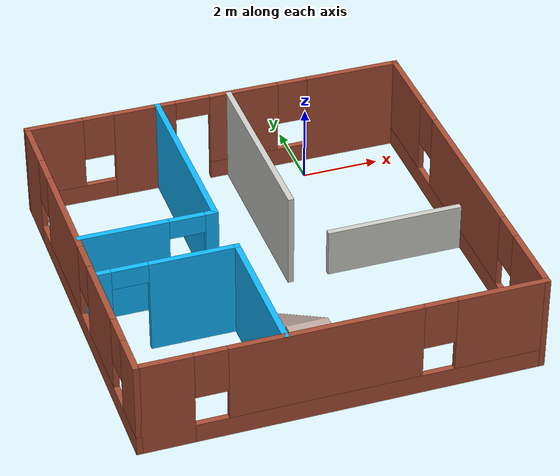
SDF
<?xml version='1.0'?>
<sdf version='1.6'>
  <model name='House'>
    <pose frame=''>-2.1867 -4.17693 0 0 -0 0</pose>
    <link name='Stairs_1'>
      <visual name='Stairs_1_Visual_0'>
        <pose frame=''>-0.820824 -1.46811 0.083333 0 -0 0</pose>
        <geometry>
          <box>
            <size>1 0.233333 0.166667</size>
          </box>
        </geometry>
        <material>
          <script>
            <uri>file://media/materials/scripts/gazebo.material</uri>
            <name>Gazebo/Grey</name>
          </script>
          <ambient>0.760784 0.662745 0.627451 1</ambient>
        </material>
        <meta>
          <layer>0</layer>
        </meta>
      </visual>
      <collision name='Stairs_1_Collision_0'>
        <geometry>
          <box>
            <size>1 0.233333 0.166667</size>
          </box>
        </geometry>
        <pose frame=''>-0.820824 -1.46811 0.083333 0 -0 0</pose>
      </collision>
      <visual name='Stairs_1_Visual_1'>
        <pose frame=''>-0.820824 -1.70145 0.25 0 -0 0</pose>
        <geometry>
          <box>
            <size>1 0.233333 0.166667</size>
          </box>
        </geometry>
        <material>
          <script>
            <uri>file://media/materials/scripts/gazebo.material</uri>
            <name>Gazebo/Grey</name>
          </script>
          <ambient>0.760784 0.662745 0.627451 1</ambient>
        </material>
        <meta>
          <layer>0</layer>
        </meta>
      </visual>
      <collision name='Stairs_1_Collision_1'>
        <geometry>
          <box>
            <size>1 0.233333 0.166667</size>
          </box>
        </geometry>
        <pose frame=''>-0.820824 -1.70145 0.25 0 -0 0</pose>
      </collision>
      <visual name='Stairs_1_Visual_2'>
        <pose frame=''>-0.820824 -1.93478 0.416667 0 -0 0</pose>
        <geometry>
          <box>
            <size>1 0.233333 0.166667</size>
          </box>
        </geometry>
        <material>
          <script>
            <uri>file://media/materials/scripts/gazebo.material</uri>
            <name>Gazebo/Grey</name>
          </script>
          <ambient>0.760784 0.662745 0.627451 1</ambient>
        </material>
        <meta>
          <layer>0</layer>
        </meta>
      </visual>
      <collision name='Stairs_1_Collision_2'>
        <geometry>
          <box>
            <size>1 0.233333 0.166667</size>
          </box>
        </geometry>
        <pose frame=''>-0.820824 -1.93478 0.416667 0 -0 0</pose>
      </collision>
      <visual name='Stairs_1_Visual_3'>
        <pose frame=''>-0.820824 -2.16811 0.583333 0 -0 0</pose>
        <geometry>
          <box>
            <size>1 0.233333 0.166667</size>
          </box>
        </geometry>
        <material>
          <script>
            <uri>file://media/materials/scripts/gazebo.material</uri>
            <name>Gazebo/Grey</name>
          </script>
          <ambient>0.760784 0.662745 0.627451 1</ambient>
        </material>
        <meta>
          <layer>0</layer>
        </meta>
      </visual>
      <collision name='Stairs_1_Collision_3'>
        <geometry>
          <box>
            <size>1 0.233333 0.166667</size>
          </box>
        </geometry>
        <pose frame=''>-0.820824 -2.16811 0.583333 0 -0 0</pose>
      </collision>
      <visual name='Stairs_1_Visual_4'>
        <pose frame=''>-0.820824 -2.40145 0.75 0 -0 0</pose>
        <geometry>
          <box>
            <size>1 0.233333 0.166667</size>
          </box>
        </geometry>
        <material>
          <script>
            <uri>file://media/materials/scripts/gazebo.material</uri>
            <name>Gazebo/Grey</name>
          </script>
          <ambient>0.760784 0.662745 0.627451 1</ambient>
        </material>
        <meta>
          <layer>0</layer>
        </meta>
      </visual>
      <collision name='Stairs_1_Collision_4'>
        <geometry>
          <box>
            <size>1 0.233333 0.166667</size>
          </box>
        </geometry>
        <pose frame=''>-0.820824 -2.40145 0.75 0 -0 0</pose>
      </collision>
      <visual name='Stairs_1_Visual_5'>
        <pose frame=''>-0.820824 -2.63478 0.916667 0 -0 0</pose>
        <geometry>
          <box>
            <size>1 0.233333 0.166667</size>
          </box>
        </geometry>
        <material>
          <script>
            <uri>file://media/materials/scripts/gazebo.material</uri>
            <name>Gazebo/Grey</name>
          </script>
          <ambient>0.760784 0.662745 0.627451 1</ambient>
        </material>
        <meta>
          <layer>0</layer>
        </meta>
      </visual>
      <collision name='Stairs_1_Collision_5'>
        <geometry>
          <box>
            <size>1 0.233333 0.166667</size>
          </box>
        </geometry>
        <pose frame=''>-0.820824 -2.63478 0.916667 0 -0 0</pose>
      </collision>
      <visual name='Stairs_1_Visual_6'>
        <pose frame=''>-0.820824 -2.86811 1.08333 0 -0 0</pose>
        <geometry>
          <box>
            <size>1 0.233333 0.166667</size>
          </box>
        </geometry>
        <material>
          <script>
            <uri>file://media/materials/scripts/gazebo.material</uri>
            <name>Gazebo/Grey</name>
          </script>
          <ambient>0.760784 0.662745 0.627451 1</ambient>
        </material>
        <meta>
          <layer>0</layer>
        </meta>
      </visual>
      <collision name='Stairs_1_Collision_6'>
        <geometry>
          <box>
            <size>1 0.233333 0.166667</size>
          </box>
        </geometry>
        <pose frame=''>-0.820824 -2.86811 1.08333 0 -0 0</pose>
      </collision>
      <visual name='Stairs_1_Visual_7'>
        <pose frame=''>-0.820824 -3.10145 1.25 0 -0 0</pose>
        <geometry>
          <box>
            <size>1 0.233333 0.166667</size>
          </box>
        </geometry>
        <material>
          <script>
            <uri>file://media/materials/scripts/gazebo.material</uri>
            <name>Gazebo/Grey</name>
          </script>
          <ambient>0.760784 0.662745 0.627451 1</ambient>
        </material>
        <meta>
          <layer>0</layer>
        </meta>
      </visual>
      <collision name='Stairs_1_Collision_7'>
        <geometry>
          <box>
            <size>1 0.233333 0.166667</size>
          </box>
        </geometry>
        <pose frame=''>-0.820824 -3.10145 1.25 0 -0 0</pose>
      </collision>
      <visual name='Stairs_1_Visual_8'>
        <pose frame=''>-0.820824 -3.33478 1.41667 0 -0 0</pose>
        <geometry>
          <box>
            <size>1 0.233333 0.166667</size>
          </box>
        </geometry>
        <material>
          <script>
            <uri>file://media/materials/scripts/gazebo.material</uri>
            <name>Gazebo/Grey</name>
          </script>
          <ambient>0.760784 0.662745 0.627451 1</ambient>
        </material>
        <meta>
          <layer>0</layer>
        </meta>
      </visual>
      <collision name='Stairs_1_Collision_8'>
        <geometry>
          <box>
            <size>1 0.233333 0.166667</size>
          </box>
        </geometry>
        <pose frame=''>-0.820824 -3.33478 1.41667 0 -0 0</pose>
      </collision>
      <visual name='Stairs_1_Visual_9'>
        <pose frame=''>-0.820824 -3.56811 1.58333 0 -0 0</pose>
        <geometry>
          <box>
            <size>1 0.233333 0.166667</size>
          </box>
        </geometry>
        <material>
          <script>
            <uri>file://media/materials/scripts/gazebo.material</uri>
            <name>Gazebo/Grey</name>
          </script>
          <ambient>0.760784 0.662745 0.627451 1</ambient>
        </material>
        <meta>
          <layer>0</layer>
        </meta>
      </visual>
      <collision name='Stairs_1_Collision_9'>
        <geometry>
          <box>
            <size>1 0.233333 0.166667</size>
          </box>
        </geometry>
        <pose frame=''>-0.820824 -3.56811 1.58333 0 -0 0</pose>
      </collision>
      <visual name='Stairs_1_Visual_10'>
        <pose frame=''>-0.820824 -3.80145 1.75 0 -0 0</pose>
        <geometry>
          <box>
            <size>1 0.233333 0.166667</size>
          </box>
        </geometry>
        <material>
          <script>
            <uri>file://media/materials/scripts/gazebo.material</uri>
            <name>Gazebo/Grey</name>
          </script>
          <ambient>0.760784 0.662745 0.627451 1</ambient>
        </material>
        <meta>
          <layer>0</layer>
        </meta>
      </visual>
      <collision name='Stairs_1_Collision_10'>
        <geometry>
          <box>
            <size>1 0.233333 0.166667</size>
          </box>
        </geometry>
        <pose frame=''>-0.820824 -3.80145 1.75 0 -0 0</pose>
      </collision>
      <visual name='Stairs_1_Visual_11'>
        <pose frame=''>-0.820824 -4.03478 1.91667 0 -0 0</pose>
        <geometry>
          <box>
            <size>1 0.233333 0.166667</size>
          </box>
        </geometry>
        <material>
          <script>
            <uri>file://media/materials/scripts/gazebo.material</uri>
            <name>Gazebo/Grey</name>
          </script>
          <ambient>0.760784 0.662745 0.627451 1</ambient>
        </material>
        <meta>
          <layer>0</layer>
        </meta>
      </visual>
      <collision name='Stairs_1_Collision_11'>
        <geometry>
          <box>
            <size>1 0.233333 0.166667</size>
          </box>
        </geometry>
        <pose frame=''>-0.820824 -4.03478 1.91667 0 -0 0</pose>
      </collision>
      <visual name='Stairs_1_Visual_12'>
        <pose frame=''>-0.820824 -4.26811 2.08333 0 -0 0</pose>
        <geometry>
          <box>
            <size>1 0.233333 0.166667</size>
          </box>
        </geometry>
        <material>
          <script>
            <uri>file://media/materials/scripts/gazebo.material</uri>
            <name>Gazebo/Grey</name>
          </script>
          <ambient>0.760784 0.662745 0.627451 1</ambient>
        </material>
        <meta>
          <layer>0</layer>
        </meta>
      </visual>
      <collision name='Stairs_1_Collision_12'>
        <geometry>
          <box>
            <size>1 0.233333 0.166667</size>
          </box>
        </geometry>
        <pose frame=''>-0.820824 -4.26811 2.08333 0 -0 0</pose>
      </collision>
      <visual name='Stairs_1_Visual_13'>
        <pose frame=''>-0.820824 -4.50145 2.25 0 -0 0</pose>
        <geometry>
          <box>
            <size>1 0.233333 0.166667</size>
          </box>
        </geometry>
        <material>
          <script>
            <uri>file://media/materials/scripts/gazebo.material</uri>
            <name>Gazebo/Grey</name>
          </script>
          <ambient>0.760784 0.662745 0.627451 1</ambient>
        </material>
        <meta>
          <layer>0</layer>
        </meta>
      </visual>
      <collision name='Stairs_1_Collision_13'>
        <geometry>
          <box>
            <size>1 0.233333 0.166667</size>
          </box>
        </geometry>
        <pose frame=''>-0.820824 -4.50145 2.25 0 -0 0</pose>
      </collision>
      <visual name='Stairs_1_Visual_14'>
        <pose frame=''>-0.820824 -4.73478 2.41667 0 -0 0</pose>
        <geometry>
          <box>
            <size>1 0.233333 0.166667</size>
          </box>
        </geometry>
        <material>
          <script>
            <uri>file://media/materials/scripts/gazebo.material</uri>
            <name>Gazebo/Grey</name>
          </script>
          <ambient>0.760784 0.662745 0.627451 1</ambient>
        </material>
        <meta>
          <layer>0</layer>
        </meta>
      </visual>
      <collision name='Stairs_1_Collision_14'>
        <geometry>
          <box>
            <size>1 0.233333 0.166667</size>
          </box>
        </geometry>
        <pose frame=''>-0.820824 -4.73478 2.41667 0 -0 0</pose>
      </collision>
    </link>
    <link name='Wall_19'>
      <collision name='Wall_19_Collision'>
        <geometry>
          <box>
            <size>5 0.15 2.5</size>
          </box>
        </geometry>
        <pose frame=''>0 0 1.25 0 -0 0</pose>
      </collision>
      <visual name='Wall_19_Visual'>
        <pose frame=''>0 0 1.25 0 -0 0</pose>
        <geometry>
          <box>
            <size>5 0.15 2.5</size>
          </box>
        </geometry>
        <material>
          <script>
            <uri>file://media/materials/scripts/gazebo.material</uri>
            <name>Gazebo/Grey</name>
          </script>
          <ambient>0.0588235 0.717647 1 1</ambient>
        </material>
        <meta>
          <layer>0</layer>
        </meta>
      </visual>
      <pose frame=''>-1.52043 2.50149 0 0 0 -1.5708</pose>
    </link>
    <link name='Wall_21'>
      <collision name='Wall_21_Collision'>
        <geometry>
          <box>
            <size>5 0.15 2.5</size>
          </box>
        </geometry>
        <pose frame=''>0 0 1.25 0 -0 0</pose>
      </collision>
      <visual name='Wall_21_Visual'>
        <pose frame=''>0 0 1.25 0 -0 0</pose>
        <geometry>
          <box>
            <size>5 0.15 2.5</size>
          </box>
        </geometry>
        <material>
          <script>
            <uri>file://media/materials/scripts/gazebo.material</uri>
            <name>Gazebo/CeilingTiled</name>
          </script>
          <ambient>0.435294 0.796078 0.67451 1</ambient>
        </material>
        <meta>
          <layer>0</layer>
        </meta>
      </visual>
      <pose frame=''>0.368696 2.44893 0 0 0 -1.5708</pose>
    </link>
    <link name='Wall_23'>
      <pose frame=''>-3.19543 0.076491 0 0 -0 3.14159</pose>
      <visual name='Wall_23_Visual_0'>
        <pose frame=''>-1.58615 0 1.25 0 -0 0</pose>
        <geometry>
          <box>
            <size>0.3277 0.15 2.5</size>
          </box>
        </geometry>
        <material>
          <script>
            <uri>file://media/materials/scripts/gazebo.material</uri>
            <name>Gazebo/Grey</name>
          </script>
          <ambient>0.0588235 0.717647 1 1</ambient>
        </material>
        <meta>
          <layer>0</layer>
        </meta>
      </visual>
      <collision name='Wall_23_Collision_0'>
        <geometry>
          <box>
            <size>0.3277 0.15 2.5</size>
          </box>
        </geometry>
        <pose frame=''>-1.58615 0 1.25 0 -0 0</pose>
      </collision>
      <visual name='Wall_23_Visual_1'>
        <pose frame=''>0.61385 0 1.25 0 -0 0</pose>
        <geometry>
          <box>
            <size>2.2723 0.15 2.5</size>
          </box>
        </geometry>
        <material>
          <script>
            <uri>file://media/materials/scripts/gazebo.material</uri>
            <name>Gazebo/Grey</name>
          </script>
          <ambient>0.0588235 0.717647 1 1</ambient>
        </material>
        <meta>
          <layer>0</layer>
        </meta>
      </visual>
      <collision name='Wall_23_Collision_1'>
        <geometry>
          <box>
            <size>2.2723 0.15 2.5</size>
          </box>
        </geometry>
        <pose frame=''>0.61385 0 1.25 0 -0 0</pose>
      </collision>
      <visual name='Wall_23_Visual_2'>
        <pose frame=''>-0.9723 0 2.25 0 -0 0</pose>
        <geometry>
          <box>
            <size>0.9 0.15 0.5</size>
          </box>
        </geometry>
        <material>
          <script>
            <uri>file://media/materials/scripts/gazebo.material</uri>
            <name>Gazebo/Grey</name>
          </script>
          <ambient>0.0588235 0.717647 1 1</ambient>
        </material>
        <meta>
          <layer>0</layer>
        </meta>
      </visual>
      <collision name='Wall_23_Collision_2'>
        <geometry>
          <box>
            <size>0.9 0.15 0.5</size>
          </box>
        </geometry>
        <pose frame=''>-0.9723 0 2.25 0 -0 0</pose>
      </collision>
    </link>
    <link name='Wall_25'>
      <collision name='Wall_25_Collision'>
        <geometry>
          <box>
            <size>3.682 0.15 2.5</size>
          </box>
        </geometry>
        <pose frame=''>0 0 1.25 0 -0 0</pose>
      </collision>
      <visual name='Wall_25_Visual'>
        <pose frame=''>0 0 1.25 0 -0 0</pose>
        <geometry>
          <box>
            <size>3.682 0.15 2.5</size>
          </box>
        </geometry>
        <material>
          <script>
            <uri>file://media/materials/scripts/gazebo.material</uri>
            <name>Gazebo/Grey</name>
          </script>
          <ambient>0.0588235 0.717647 1 1</ambient>
        </material>
        <meta>
          <layer>0</layer>
        </meta>
      </visual>
      <pose frame=''>-1.4333 -3.15307 0 0 0 -1.5708</pose>
    </link>
    <link name='Wall_27'>
      <pose frame=''>-3.1083 -1.38707 0 0 -0 3.14159</pose>
      <visual name='Wall_27_Visual_0'>
        <pose frame=''>-0.624361 0 1.25 0 -0 0</pose>
        <geometry>
          <box>
            <size>2.25128 0.15 2.5</size>
          </box>
        </geometry>
        <material>
          <script>
            <uri>file://media/materials/scripts/gazebo.material</uri>
            <name>Gazebo/Grey</name>
          </script>
          <ambient>0.0588235 0.717647 1 1</ambient>
        </material>
        <meta>
          <layer>0</layer>
        </meta>
      </visual>
      <collision name='Wall_27_Collision_0'>
        <geometry>
          <box>
            <size>2.25128 0.15 2.5</size>
          </box>
        </geometry>
        <pose frame=''>-0.624361 0 1.25 0 -0 0</pose>
      </collision>
      <visual name='Wall_27_Visual_1'>
        <pose frame=''>1.57564 0 1.25 0 -0 0</pose>
        <geometry>
          <box>
            <size>0.348721 0.15 2.5</size>
          </box>
        </geometry>
        <material>
          <script>
            <uri>file://media/materials/scripts/gazebo.material</uri>
            <name>Gazebo/Grey</name>
          </script>
          <ambient>0.0588235 0.717647 1 1</ambient>
        </material>
        <meta>
          <layer>0</layer>
        </meta>
      </visual>
      <collision name='Wall_27_Collision_1'>
        <geometry>
          <box>
            <size>0.348721 0.15 2.5</size>
          </box>
        </geometry>
        <pose frame=''>1.57564 0 1.25 0 -0 0</pose>
      </collision>
      <visual name='Wall_27_Visual_2'>
        <pose frame=''>0.951279 0 2.25 0 -0 0</pose>
        <geometry>
          <box>
            <size>0.9 0.15 0.5</size>
          </box>
        </geometry>
        <material>
          <script>
            <uri>file://media/materials/scripts/gazebo.material</uri>
            <name>Gazebo/Grey</name>
          </script>
          <ambient>0.0588235 0.717647 1 1</ambient>
        </material>
        <meta>
          <layer>0</layer>
        </meta>
      </visual>
      <collision name='Wall_27_Collision_2'>
        <geometry>
          <box>
            <size>0.9 0.15 0.5</size>
          </box>
        </geometry>
        <pose frame=''>0.951279 0 2.25 0 -0 0</pose>
      </collision>
    </link>
    <link name='Wall_40'>
      <pose frame=''>2.6507 0.025926 0 0 -0 0</pose>
      <visual name='Wall_40_Visual_0'>
        <pose frame=''>-2.2287 0 0.625 0 -0 0</pose>
        <geometry>
          <box>
            <size>0.042594 0.15 1.25</size>
          </box>
        </geometry>
        <material>
          <script>
            <uri>file://media/materials/scripts/gazebo.material</uri>
            <name>Gazebo/CeilingTiled</name>
          </script>
          <ambient>1 1 1 1</ambient>
        </material>
        <meta>
          <layer>0</layer>
        </meta>
      </visual>
      <collision name='Wall_40_Collision_0'>
        <geometry>
          <box>
            <size>0.042594 0.15 1.25</size>
          </box>
        </geometry>
        <pose frame=''>-2.2287 0 0.625 0 -0 0</pose>
      </collision>
      <visual name='Wall_40_Visual_1'>
        <pose frame=''>0.471297 0 0.625 0 -0 0</pose>
        <geometry>
          <box>
            <size>3.55741 0.15 1.25</size>
          </box>
        </geometry>
        <material>
          <script>
            <uri>file://media/materials/scripts/gazebo.material</uri>
            <name>Gazebo/CeilingTiled</name>
          </script>
          <ambient>1 1 1 1</ambient>
        </material>
        <meta>
          <layer>0</layer>
        </meta>
      </visual>
      <collision name='Wall_40_Collision_1'>
        <geometry>
          <box>
            <size>3.55741 0.15 1.25</size>
          </box>
        </geometry>
        <pose frame=''>0.471297 0 0.625 0 -0 0</pose>
      </collision>
    </link>
    <link name='Wall_5'>
      <pose frame=''>-4.925 -0.001492 0 0 0 -1.5708</pose>
      <visual name='Wall_5_Visual_0'>
        <pose frame=''>-4.24263 0 1.25 0 -0 0</pose>
        <geometry>
          <box>
            <size>1.51473 0.15 2.5</size>
          </box>
        </geometry>
        <material>
          <script>
            <uri>file://media/materials/scripts/gazebo.material</uri>
            <name>Gazebo/Bricks</name>
          </script>
          <ambient>1 1 1 1</ambient>
        </material>
        <meta>
          <layer>0</layer>
        </meta>
      </visual>
      <collision name='Wall_5_Collision_0'>
        <geometry>
          <box>
            <size>1.51473 0.15 2.5</size>
          </box>
        </geometry>
        <pose frame=''>-4.24263 0 1.25 0 -0 0</pose>
      </collision>
      <visual name='Wall_5_Visual_1'>
        <pose frame=''>0.757368 0 0.25 0 -0 0</pose>
        <geometry>
          <box>
            <size>8.48527 0.15 0.5</size>
          </box>
        </geometry>
        <material>
          <script>
            <uri>file://media/materials/scripts/gazebo.material</uri>
            <name>Gazebo/Bricks</name>
          </script>
          <ambient>1 1 1 1</ambient>
        </material>
        <meta>
          <layer>0</layer>
        </meta>
      </visual>
      <collision name='Wall_5_Collision_1'>
        <geometry>
          <box>
            <size>8.48527 0.15 0.5</size>
          </box>
        </geometry>
        <pose frame=''>0.757368 0 0.25 0 -0 0</pose>
      </collision>
      <visual name='Wall_5_Visual_2'>
        <pose frame=''>-1.21634 0 1.5 0 -0 0</pose>
        <geometry>
          <box>
            <size>2.93785 0.15 2</size>
          </box>
        </geometry>
        <material>
          <script>
            <uri>file://media/materials/scripts/gazebo.material</uri>
            <name>Gazebo/Bricks</name>
          </script>
          <ambient>1 1 1 1</ambient>
        </material>
        <meta>
          <layer>0</layer>
        </meta>
      </visual>
      <collision name='Wall_5_Collision_2'>
        <geometry>
          <box>
            <size>2.93785 0.15 2</size>
          </box>
        </geometry>
        <pose frame=''>-1.21634 0 1.5 0 -0 0</pose>
      </collision>
      <visual name='Wall_5_Visual_3'>
        <pose frame=''>2.08928 0 1.5 0 -0 0</pose>
        <geometry>
          <box>
            <size>2.0734 0.15 2</size>
          </box>
        </geometry>
        <material>
          <script>
            <uri>file://media/materials/scripts/gazebo.material</uri>
            <name>Gazebo/Bricks</name>
          </script>
          <ambient>1 1 1 1</ambient>
        </material>
        <meta>
          <layer>0</layer>
        </meta>
      </visual>
      <collision name='Wall_5_Collision_3'>
        <geometry>
          <box>
            <size>2.0734 0.15 2</size>
          </box>
        </geometry>
        <pose frame=''>2.08928 0 1.5 0 -0 0</pose>
      </collision>
      <visual name='Wall_5_Visual_4'>
        <pose frame=''>4.46299 0 1.5 0 -0 0</pose>
        <geometry>
          <box>
            <size>1.07402 0.15 2</size>
          </box>
        </geometry>
        <material>
          <script>
            <uri>file://media/materials/scripts/gazebo.material</uri>
            <name>Gazebo/Bricks</name>
          </script>
          <ambient>1 1 1 1</ambient>
        </material>
        <meta>
          <layer>0</layer>
        </meta>
      </visual>
      <collision name='Wall_5_Collision_4'>
        <geometry>
          <box>
            <size>1.07402 0.15 2</size>
          </box>
        </geometry>
        <pose frame=''>4.46299 0 1.5 0 -0 0</pose>
      </collision>
      <visual name='Wall_5_Visual_5'>
        <pose frame=''>-3.08527 0 1.9 0 -0 0</pose>
        <geometry>
          <box>
            <size>0.8 0.15 1.2</size>
          </box>
        </geometry>
        <material>
          <script>
            <uri>file://media/materials/scripts/gazebo.material</uri>
            <name>Gazebo/Bricks</name>
          </script>
          <ambient>1 1 1 1</ambient>
        </material>
        <meta>
          <layer>0</layer>
        </meta>
      </visual>
      <collision name='Wall_5_Collision_5'>
        <geometry>
          <box>
            <size>0.8 0.15 1.2</size>
          </box>
        </geometry>
        <pose frame=''>-3.08527 0 1.9 0 -0 0</pose>
      </collision>
      <visual name='Wall_5_Visual_6'>
        <pose frame=''>0.652583 0 1.9 0 -0 0</pose>
        <geometry>
          <box>
            <size>0.8 0.15 1.2</size>
          </box>
        </geometry>
        <material>
          <script>
            <uri>file://media/materials/scripts/gazebo.material</uri>
            <name>Gazebo/Bricks</name>
          </script>
          <ambient>1 1 1 1</ambient>
        </material>
        <meta>
          <layer>0</layer>
        </meta>
      </visual>
      <collision name='Wall_5_Collision_6'>
        <geometry>
          <box>
            <size>0.8 0.15 1.2</size>
          </box>
        </geometry>
        <pose frame=''>0.652583 0 1.9 0 -0 0</pose>
      </collision>
      <visual name='Wall_5_Visual_7'>
        <pose frame=''>3.52598 0 1.9 0 -0 0</pose>
        <geometry>
          <box>
            <size>0.8 0.15 1.2</size>
          </box>
        </geometry>
        <material>
          <script>
            <uri>file://media/materials/scripts/gazebo.material</uri>
            <name>Gazebo/Bricks</name>
          </script>
          <ambient>1 1 1 1</ambient>
        </material>
        <meta>
          <layer>0</layer>
        </meta>
      </visual>
      <collision name='Wall_5_Collision_7'>
        <geometry>
          <box>
            <size>0.8 0.15 1.2</size>
          </box>
        </geometry>
        <pose frame=''>3.52598 0 1.9 0 -0 0</pose>
      </collision>
    </link>
    <link name='Wall_6'>
      <pose frame=''>0 -4.92649 0 0 -0 0</pose>
      <visual name='Wall_6_Visual_0'>
        <pose frame=''>-4.29512 0 1.25 0 -0 0</pose>
        <geometry>
          <box>
            <size>1.40977 0.15 2.5</size>
          </box>
        </geometry>
        <material>
          <script>
            <uri>file://media/materials/scripts/gazebo.material</uri>
            <name>Gazebo/Bricks</name>
          </script>
          <ambient>1 1 1 1</ambient>
        </material>
        <meta>
          <layer>0</layer>
        </meta>
      </visual>
      <collision name='Wall_6_Collision_0'>
        <geometry>
          <box>
            <size>1.40977 0.15 2.5</size>
          </box>
        </geometry>
        <pose frame=''>-4.29512 0 1.25 0 -0 0</pose>
      </collision>
      <visual name='Wall_6_Visual_1'>
        <pose frame=''>0.704885 0 0.25 0 -0 0</pose>
        <geometry>
          <box>
            <size>8.59023 0.15 0.5</size>
          </box>
        </geometry>
        <material>
          <script>
            <uri>file://media/materials/scripts/gazebo.material</uri>
            <name>Gazebo/Bricks</name>
          </script>
          <ambient>1 1 1 1</ambient>
        </material>
        <meta>
          <layer>0</layer>
        </meta>
      </visual>
      <collision name='Wall_6_Collision_1'>
        <geometry>
          <box>
            <size>8.59023 0.15 0.5</size>
          </box>
        </geometry>
        <pose frame=''>0.704885 0 0.25 0 -0 0</pose>
      </collision>
      <visual name='Wall_6_Visual_2'>
        <pose frame=''>-0.444895 0 1.5 0 -0 0</pose>
        <geometry>
          <box>
            <size>4.69067 0.15 2</size>
          </box>
        </geometry>
        <material>
          <script>
            <uri>file://media/materials/scripts/gazebo.material</uri>
            <name>Gazebo/Bricks</name>
          </script>
          <ambient>1 1 1 1</ambient>
        </material>
        <meta>
          <layer>0</layer>
        </meta>
      </visual>
      <collision name='Wall_6_Collision_2'>
        <geometry>
          <box>
            <size>4.69067 0.15 2</size>
          </box>
        </geometry>
        <pose frame=''>-0.444895 0 1.5 0 -0 0</pose>
      </collision>
      <visual name='Wall_6_Visual_3'>
        <pose frame=''>3.85022 0 1.5 0 -0 0</pose>
        <geometry>
          <box>
            <size>2.29956 0.15 2</size>
          </box>
        </geometry>
        <material>
          <script>
            <uri>file://media/materials/scripts/gazebo.material</uri>
            <name>Gazebo/Bricks</name>
          </script>
          <ambient>1 1 1 1</ambient>
        </material>
        <meta>
          <layer>0</layer>
        </meta>
      </visual>
      <collision name='Wall_6_Collision_3'>
        <geometry>
          <box>
            <size>2.29956 0.15 2</size>
          </box>
        </geometry>
        <pose frame=''>3.85022 0 1.5 0 -0 0</pose>
      </collision>
      <visual name='Wall_6_Visual_4'>
        <pose frame=''>-3.19023 0 1.9 0 -0 0</pose>
        <geometry>
          <box>
            <size>0.8 0.15 1.2</size>
          </box>
        </geometry>
        <material>
          <script>
            <uri>file://media/materials/scripts/gazebo.material</uri>
            <name>Gazebo/Bricks</name>
          </script>
          <ambient>1 1 1 1</ambient>
        </material>
        <meta>
          <layer>0</layer>
        </meta>
      </visual>
      <collision name='Wall_6_Collision_4'>
        <geometry>
          <box>
            <size>0.8 0.15 1.2</size>
          </box>
        </geometry>
        <pose frame=''>-3.19023 0 1.9 0 -0 0</pose>
      </collision>
      <visual name='Wall_6_Visual_5'>
        <pose frame=''>2.30044 0 1.9 0 -0 0</pose>
        <geometry>
          <box>
            <size>0.8 0.15 1.2</size>
          </box>
        </geometry>
        <material>
          <script>
            <uri>file://media/materials/scripts/gazebo.material</uri>
            <name>Gazebo/Bricks</name>
          </script>
          <ambient>1 1 1 1</ambient>
        </material>
        <meta>
          <layer>0</layer>
        </meta>
      </visual>
      <collision name='Wall_6_Collision_5'>
        <geometry>
          <box>
            <size>0.8 0.15 1.2</size>
          </box>
        </geometry>
        <pose frame=''>2.30044 0 1.9 0 -0 0</pose>
      </collision>
    </link>
    <link name='Wall_7'>
      <pose frame=''>4.925 -0.001492 0 0 -0 1.5708</pose>
      <visual name='Wall_7_Visual_0'>
        <pose frame=''>-4.05694 0 1.25 0 -0 0</pose>
        <geometry>
          <box>
            <size>1.88613 0.15 2.5</size>
          </box>
        </geometry>
        <material>
          <script>
            <uri>file://media/materials/scripts/gazebo.material</uri>
            <name>Gazebo/Bricks</name>
          </script>
          <ambient>1 1 1 1</ambient>
        </material>
        <meta>
          <layer>0</layer>
        </meta>
      </visual>
      <collision name='Wall_7_Collision_0'>
        <geometry>
          <box>
            <size>1.88613 0.15 2.5</size>
          </box>
        </geometry>
        <pose frame=''>-4.05694 0 1.25 0 -0 0</pose>
      </collision>
      <visual name='Wall_7_Visual_1'>
        <pose frame=''>0.943065 0 0.25 0 -0 0</pose>
        <geometry>
          <box>
            <size>8.11387 0.15 0.5</size>
          </box>
        </geometry>
        <material>
          <script>
            <uri>file://media/materials/scripts/gazebo.material</uri>
            <name>Gazebo/Bricks</name>
          </script>
          <ambient>1 1 1 1</ambient>
        </material>
        <meta>
          <layer>0</layer>
        </meta>
      </visual>
      <collision name='Wall_7_Collision_1'>
        <geometry>
          <box>
            <size>8.11387 0.15 0.5</size>
          </box>
        </geometry>
        <pose frame=''>0.943065 0 0.25 0 -0 0</pose>
      </collision>
      <visual name='Wall_7_Visual_2'>
        <pose frame=''>-0.118907 0 1.5 0 -0 0</pose>
        <geometry>
          <box>
            <size>4.38993 0.15 2</size>
          </box>
        </geometry>
        <material>
          <script>
            <uri>file://media/materials/scripts/gazebo.material</uri>
            <name>Gazebo/Bricks</name>
          </script>
          <ambient>1 1 1 1</ambient>
        </material>
        <meta>
          <layer>0</layer>
        </meta>
      </visual>
      <collision name='Wall_7_Collision_2'>
        <geometry>
          <box>
            <size>4.38993 0.15 2</size>
          </box>
        </geometry>
        <pose frame=''>-0.118907 0 1.5 0 -0 0</pose>
      </collision>
      <visual name='Wall_7_Visual_3'>
        <pose frame=''>3.93803 0 1.5 0 -0 0</pose>
        <geometry>
          <box>
            <size>2.12394 0.15 2</size>
          </box>
        </geometry>
        <material>
          <script>
            <uri>file://media/materials/scripts/gazebo.material</uri>
            <name>Gazebo/Bricks</name>
          </script>
          <ambient>1 1 1 1</ambient>
        </material>
        <meta>
          <layer>0</layer>
        </meta>
      </visual>
      <collision name='Wall_7_Collision_3'>
        <geometry>
          <box>
            <size>2.12394 0.15 2</size>
          </box>
        </geometry>
        <pose frame=''>3.93803 0 1.5 0 -0 0</pose>
      </collision>
      <visual name='Wall_7_Visual_4'>
        <pose frame=''>-2.71387 0 1.9 0 -0 0</pose>
        <geometry>
          <box>
            <size>0.8 0.15 1.2</size>
          </box>
        </geometry>
        <material>
          <script>
            <uri>file://media/materials/scripts/gazebo.material</uri>
            <name>Gazebo/Bricks</name>
          </script>
          <ambient>1 1 1 1</ambient>
        </material>
        <meta>
          <layer>0</layer>
        </meta>
      </visual>
      <collision name='Wall_7_Collision_4'>
        <geometry>
          <box>
            <size>0.8 0.15 1.2</size>
          </box>
        </geometry>
        <pose frame=''>-2.71387 0 1.9 0 -0 0</pose>
      </collision>
      <visual name='Wall_7_Visual_5'>
        <pose frame=''>2.47606 0 1.9 0 -0 0</pose>
        <geometry>
          <box>
            <size>0.8 0.15 1.2</size>
          </box>
        </geometry>
        <material>
          <script>
            <uri>file://media/materials/scripts/gazebo.material</uri>
            <name>Gazebo/Bricks</name>
          </script>
          <ambient>1 1 1 1</ambient>
        </material>
        <meta>
          <layer>0</layer>
        </meta>
      </visual>
      <collision name='Wall_7_Collision_5'>
        <geometry>
          <box>
            <size>0.8 0.15 1.2</size>
          </box>
        </geometry>
        <pose frame=''>2.47606 0 1.9 0 -0 0</pose>
      </collision>
    </link>
    <link name='Wall_8'>
      <pose frame=''>0 4.92351 0 0 -0 3.14159</pose>
      <visual name='Wall_8_Visual_0'>
        <pose frame=''>-3.74126 0 1.25 0 -0 0</pose>
        <geometry>
          <box>
            <size>2.51747 0.15 2.5</size>
          </box>
        </geometry>
        <material>
          <script>
            <uri>file://media/materials/scripts/gazebo.material</uri>
            <name>Gazebo/Bricks</name>
          </script>
          <ambient>1 1 1 1</ambient>
        </material>
        <meta>
          <layer>0</layer>
        </meta>
      </visual>
      <collision name='Wall_8_Collision_0'>
        <geometry>
          <box>
            <size>2.51747 0.15 2.5</size>
          </box>
        </geometry>
        <pose frame=''>-3.74126 0 1.25 0 -0 0</pose>
      </collision>
      <visual name='Wall_8_Visual_1'>
        <pose frame=''>1.87774 0 1.25 0 -0 0</pose>
        <geometry>
          <box>
            <size>1.63359 0.15 2.5</size>
          </box>
        </geometry>
        <material>
          <script>
            <uri>file://media/materials/scripts/gazebo.material</uri>
            <name>Gazebo/Bricks</name>
          </script>
          <ambient>1 1 1 1</ambient>
        </material>
        <meta>
          <layer>0</layer>
        </meta>
      </visual>
      <collision name='Wall_8_Collision_1'>
        <geometry>
          <box>
            <size>1.63359 0.15 2.5</size>
          </box>
        </geometry>
        <pose frame=''>1.87774 0 1.25 0 -0 0</pose>
      </collision>
      <visual name='Wall_8_Visual_2'>
        <pose frame=''>-1.16079 0 0.25 0 -0 0</pose>
        <geometry>
          <box>
            <size>2.64347 0.15 0.5</size>
          </box>
        </geometry>
        <material>
          <script>
            <uri>file://media/materials/scripts/gazebo.material</uri>
            <name>Gazebo/Bricks</name>
          </script>
          <ambient>1 1 1 1</ambient>
        </material>
        <meta>
          <layer>0</layer>
        </meta>
      </visual>
      <collision name='Wall_8_Collision_2'>
        <geometry>
          <box>
            <size>2.64347 0.15 0.5</size>
          </box>
        </geometry>
        <pose frame=''>-1.16079 0 0.25 0 -0 0</pose>
      </collision>
      <visual name='Wall_8_Visual_3'>
        <pose frame=''>3.84727 0 0.25 0 -0 0</pose>
        <geometry>
          <box>
            <size>2.30547 0.15 0.5</size>
          </box>
        </geometry>
        <material>
          <script>
            <uri>file://media/materials/scripts/gazebo.material</uri>
            <name>Gazebo/Bricks</name>
          </script>
          <ambient>1 1 1 1</ambient>
        </material>
        <meta>
          <layer>0</layer>
        </meta>
      </visual>
      <collision name='Wall_8_Collision_3'>
        <geometry>
          <box>
            <size>2.30547 0.15 0.5</size>
          </box>
        </geometry>
        <pose frame=''>3.84727 0 0.25 0 -0 0</pose>
      </collision>
      <visual name='Wall_8_Visual_4'>
        <pose frame=''>-0.760792 0 1.5 0 -0 0</pose>
        <geometry>
          <box>
            <size>1.84347 0.15 2</size>
          </box>
        </geometry>
        <material>
          <script>
            <uri>file://media/materials/scripts/gazebo.material</uri>
            <name>Gazebo/Bricks</name>
          </script>
          <ambient>1 1 1 1</ambient>
        </material>
        <meta>
          <layer>0</layer>
        </meta>
      </visual>
      <collision name='Wall_8_Collision_4'>
        <geometry>
          <box>
            <size>1.84347 0.15 2</size>
          </box>
        </geometry>
        <pose frame=''>-0.760792 0 1.5 0 -0 0</pose>
      </collision>
      <visual name='Wall_8_Visual_5'>
        <pose frame=''>-0.760792 0 1.5 0 -0 0</pose>
        <geometry>
          <box>
            <size>1.84347 0.15 2</size>
          </box>
        </geometry>
        <material>
          <script>
            <uri>file://media/materials/scripts/gazebo.material</uri>
            <name>Gazebo/Bricks</name>
          </script>
          <ambient>1 1 1 1</ambient>
        </material>
        <meta>
          <layer>0</layer>
        </meta>
      </visual>
      <collision name='Wall_8_Collision_5'>
        <geometry>
          <box>
            <size>1.84347 0.15 2</size>
          </box>
        </geometry>
        <pose frame=''>-0.760792 0 1.5 0 -0 0</pose>
      </collision>
      <visual name='Wall_8_Visual_6'>
        <pose frame=''>4.24727 0 1.5 0 -0 0</pose>
        <geometry>
          <box>
            <size>1.50547 0.15 2</size>
          </box>
        </geometry>
        <material>
          <script>
            <uri>file://media/materials/scripts/gazebo.material</uri>
            <name>Gazebo/Bricks</name>
          </script>
          <ambient>1 1 1 1</ambient>
        </material>
        <meta>
          <layer>0</layer>
        </meta>
      </visual>
      <collision name='Wall_8_Collision_6'>
        <geometry>
          <box>
            <size>1.50547 0.15 2</size>
          </box>
        </geometry>
        <pose frame=''>4.24727 0 1.5 0 -0 0</pose>
      </collision>
      <visual name='Wall_8_Visual_7'>
        <pose frame=''>-2.08253 0 1.9 0 -0 0</pose>
        <geometry>
          <box>
            <size>0.8 0.15 1.2</size>
          </box>
        </geometry>
        <material>
          <script>
            <uri>file://media/materials/scripts/gazebo.material</uri>
            <name>Gazebo/Bricks</name>
          </script>
          <ambient>1 1 1 1</ambient>
        </material>
        <meta>
          <layer>0</layer>
        </meta>
      </visual>
      <collision name='Wall_8_Collision_7'>
        <geometry>
          <box>
            <size>0.8 0.15 1.2</size>
          </box>
        </geometry>
        <pose frame=''>-2.08253 0 1.9 0 -0 0</pose>
      </collision>
      <visual name='Wall_8_Visual_8'>
        <pose frame=''>3.09453 0 1.9 0 -0 0</pose>
        <geometry>
          <box>
            <size>0.8 0.15 1.2</size>
          </box>
        </geometry>
        <material>
          <script>
            <uri>file://media/materials/scripts/gazebo.material</uri>
            <name>Gazebo/Bricks</name>
          </script>
          <ambient>1 1 1 1</ambient>
        </material>
        <meta>
          <layer>0</layer>
        </meta>
      </visual>
      <collision name='Wall_8_Collision_8'>
        <geometry>
          <box>
            <size>0.8 0.15 1.2</size>
          </box>
        </geometry>
        <pose frame=''>3.09453 0 1.9 0 -0 0</pose>
      </collision>
      <visual name='Wall_8_Visual_9'>
        <pose frame=''>0.610943 0 2.25 0 -0 0</pose>
        <geometry>
          <box>
            <size>0.9 0.15 0.5</size>
          </box>
        </geometry>
        <material>
          <script>
            <uri>file://media/materials/scripts/gazebo.material</uri>
            <name>Gazebo/Bricks</name>
          </script>
          <ambient>1 1 1 1</ambient>
        </material>
        <meta>
          <layer>0</layer>
        </meta>
      </visual>
      <collision name='Wall_8_Collision_9'>
        <geometry>
          <box>
            <size>0.9 0.15 0.5</size>
          </box>
        </geometry>
        <pose frame=''>0.610943 0 2.25 0 -0 0</pose>
      </collision>
      <visual name='Wall_8_Visual_10'>
        <pose frame=''>0.610943 0 2.25 0 -0 0</pose>
        <geometry>
          <box>
            <size>0.9 0.15 0.5</size>
          </box>
        </geometry>
        <material>
          <script>
            <uri>file://media/materials/scripts/gazebo.material</uri>
            <name>Gazebo/Bricks</name>
          </script>
          <ambient>1 1 1 1</ambient>
        </material>
        <meta>
          <layer>0</layer>
        </meta>
      </visual>
      <collision name='Wall_8_Collision_10'>
        <geometry>
          <box>
            <size>0.9 0.15 0.5</size>
          </box>
        </geometry>
        <pose frame=''>0.610943 0 2.25 0 -0 0</pose>
      </collision>
    </link>
    <static>1</static>
  </model>
</sdf>
